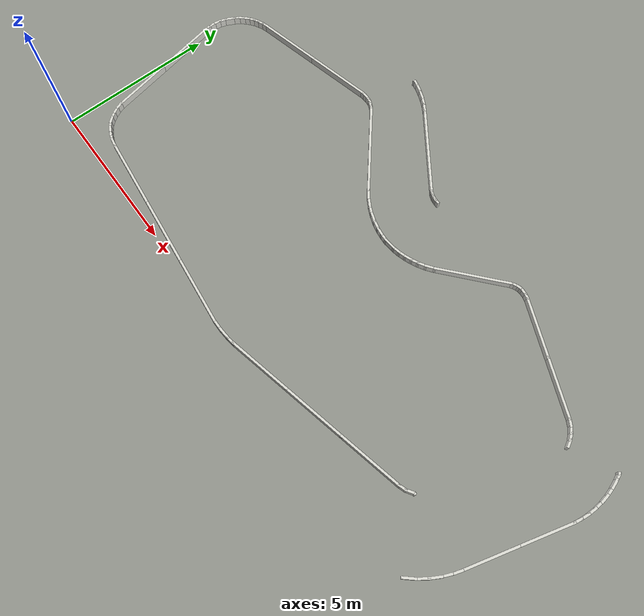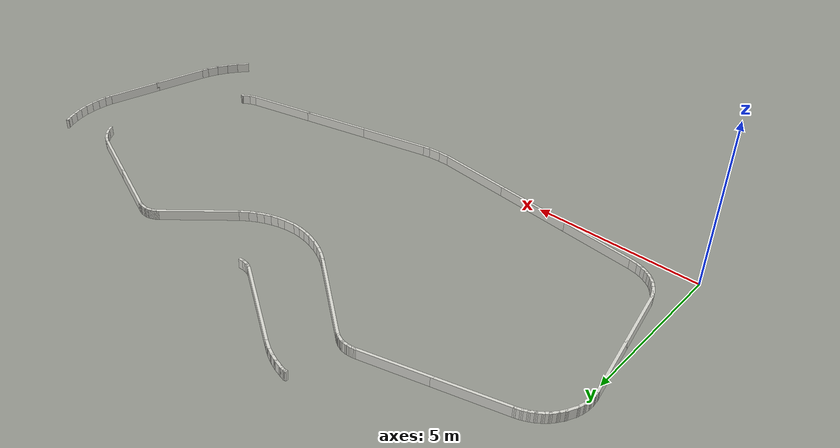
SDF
<sdf version="1.9">
 <world name="default">
  <model name="track_wall">
   <static>true</static>
   <link name="wall_link">
    <collision name="left1_0_0_collision">
     <pose>17.558559 5.969102 0.150000 0.000000 0.000000 2.106433</pose>
     <geometry><box><size>0.284899 0.080000 0.300000</size></box></geometry>
    </collision>
    <visual name="left1_0_0_visual">
     <pose>17.558559 5.969102 0.150000 0.000000 0.000000 2.106433</pose>
     <geometry><box><size>0.284899 0.080000 0.300000</size></box></geometry>
     <material><ambient>0.85 0.85 0.82 1</ambient><diffuse>0.85 0.85 0.82 1</diffuse></material>
    </visual>
    <collision name="left1_1_0_collision">
     <pose>17.440001 6.135021 0.150000 0.000000 0.000000 2.276211</pose>
     <geometry><box><size>0.284423 0.080000 0.300000</size></box></geometry>
    </collision>
    <visual name="left1_1_0_visual">
     <pose>17.440001 6.135021 0.150000 0.000000 0.000000 2.276211</pose>
     <geometry><box><size>0.284423 0.080000 0.300000</size></box></geometry>
     <material><ambient>0.85 0.85 0.82 1</ambient><diffuse>0.85 0.85 0.82 1</diffuse></material>
    </visual>
    <collision name="left1_2_0_collision">
     <pose>17.295451 6.278189 0.150000 0.000000 0.000000 2.445988</pose>
     <geometry><box><size>0.283947 0.080000 0.300000</size></box></geometry>
    </collision>
    <visual name="left1_2_0_visual">
     <pose>17.295451 6.278189 0.150000 0.000000 0.000000 2.445988</pose>
     <geometry><box><size>0.283947 0.080000 0.300000</size></box></geometry>
     <material><ambient>0.85 0.85 0.82 1</ambient><diffuse>0.85 0.85 0.82 1</diffuse></material>
    </visual>
    <collision name="left1_3_0_collision">
     <pose>17.129177 6.394603 0.150000 0.000000 0.000000 2.615766</pose>
     <geometry><box><size>0.283471 0.080000 0.300000</size></box></geometry>
    </collision>
    <visual name="left1_3_0_visual">
     <pose>17.129177 6.394603 0.150000 0.000000 0.000000 2.615766</pose>
     <geometry><box><size>0.283471 0.080000 0.300000</size></box></geometry>
     <material><ambient>0.85 0.85 0.82 1</ambient><diffuse>0.85 0.85 0.82 1</diffuse></material>
    </visual>
    <collision name="left1_4_0_collision">
     <pose>16.167286 6.801773 0.150000 0.000000 0.000000 2.754644</pose>
     <geometry><box><size>1.967337 0.080000 0.300000</size></box></geometry>
    </collision>
    <visual name="left1_4_0_visual">
     <pose>16.167286 6.801773 0.150000 0.000000 0.000000 2.754644</pose>
     <geometry><box><size>1.967337 0.080000 0.300000</size></box></geometry>
     <material><ambient>0.85 0.85 0.82 1</ambient><diffuse>0.85 0.85 0.82 1</diffuse></material>
    </visual>
    <collision name="left1_4_1_collision">
     <pose>14.419489 7.513986 0.150000 0.000000 0.000000 2.754644</pose>
     <geometry><box><size>1.967337 0.080000 0.300000</size></box></geometry>
    </collision>
    <visual name="left1_4_1_visual">
     <pose>14.419489 7.513986 0.150000 0.000000 0.000000 2.754644</pose>
     <geometry><box><size>1.967337 0.080000 0.300000</size></box></geometry>
     <material><ambient>0.85 0.85 0.82 1</ambient><diffuse>0.85 0.85 0.82 1</diffuse></material>
    </visual>
    <collision name="left1_5_0_collision">
     <pose>13.476886 7.889245 0.150000 0.000000 0.000000 2.869739</pose>
     <geometry><box><size>0.222648 0.080000 0.300000</size></box></geometry>
    </collision>
    <visual name="left1_5_0_visual">
     <pose>13.476886 7.889245 0.150000 0.000000 0.000000 2.869739</pose>
     <geometry><box><size>0.222648 0.080000 0.300000</size></box></geometry>
     <material><ambient>0.85 0.85 0.82 1</ambient><diffuse>0.85 0.85 0.82 1</diffuse></material>
    </visual>
    <collision name="left1_6_0_collision">
     <pose>13.332608 7.914382 0.150000 0.000000 0.000000 3.062554</pose>
     <geometry><box><size>0.231621 0.080000 0.300000</size></box></geometry>
    </collision>
    <visual name="left1_6_0_visual">
     <pose>13.332608 7.914382 0.150000 0.000000 0.000000 3.062554</pose>
     <geometry><box><size>0.231621 0.080000 0.300000</size></box></geometry>
     <material><ambient>0.85 0.85 0.82 1</ambient><diffuse>0.85 0.85 0.82 1</diffuse></material>
    </visual>
    <collision name="left1_7_0_collision">
     <pose>13.205226 7.915748 0.150000 0.000000 0.000000 -3.052659</pose>
     <geometry><box><size>0.184027 0.080000 0.300000</size></box></geometry>
    </collision>
    <visual name="left1_7_0_visual">
     <pose>13.205226 7.915748 0.150000 0.000000 0.000000 -3.052659</pose>
     <geometry><box><size>0.184027 0.080000 0.300000</size></box></geometry>
     <material><ambient>0.85 0.85 0.82 1</ambient><diffuse>0.85 0.85 0.82 1</diffuse></material>
    </visual>
    <collision name="left1_8_0_collision">
     <pose>13.112785 7.898717 0.150000 0.000000 0.000000 -2.845142</pose>
     <geometry><box><size>0.164972 0.080000 0.300000</size></box></geometry>
    </collision>
    <visual name="left1_8_0_visual">
     <pose>13.112785 7.898717 0.150000 0.000000 0.000000 -2.845142</pose>
     <geometry><box><size>0.164972 0.080000 0.300000</size></box></geometry>
     <material><ambient>0.85 0.85 0.82 1</ambient><diffuse>0.85 0.85 0.82 1</diffuse></material>
    </visual>
    <collision name="left1_9_0_collision">
     <pose>13.021315 7.863096 0.150000 0.000000 0.000000 -2.713295</pose>
     <geometry><box><size>0.191771 0.080000 0.300000</size></box></geometry>
    </collision>
    <visual name="left1_9_0_visual">
     <pose>13.021315 7.863096 0.150000 0.000000 0.000000 -2.713295</pose>
     <geometry><box><size>0.191771 0.080000 0.300000</size></box></geometry>
     <material><ambient>0.85 0.85 0.82 1</ambient><diffuse>0.85 0.85 0.82 1</diffuse></material>
    </visual>
    <collision name="left1_10_0_collision">
     <pose>12.924410 7.809763 0.150000 0.000000 0.000000 -2.562491</pose>
     <geometry><box><size>0.190082 0.080000 0.300000</size></box></geometry>
    </collision>
    <visual name="left1_10_0_visual">
     <pose>12.924410 7.809763 0.150000 0.000000 0.000000 -2.562491</pose>
     <geometry><box><size>0.190082 0.080000 0.300000</size></box></geometry>
     <material><ambient>0.85 0.85 0.82 1</ambient><diffuse>0.85 0.85 0.82 1</diffuse></material>
    </visual>
    <collision name="left1_11_0_collision">
     <pose>11.999515 7.005900 0.150000 0.000000 0.000000 -2.419700</pose>
     <geometry><box><size>2.421805 0.080000 0.300000</size></box></geometry>
    </collision>
    <visual name="left1_11_0_visual">
     <pose>11.999515 7.005900 0.150000 0.000000 0.000000 -2.419700</pose>
     <geometry><box><size>2.421805 0.080000 0.300000</size></box></geometry>
     <material><ambient>0.85 0.85 0.82 1</ambient><diffuse>0.85 0.85 0.82 1</diffuse></material>
    </visual>
    <collision name="left1_12_0_collision">
     <pose>11.007402 6.147697 0.150000 0.000000 0.000000 -2.500931</pose>
     <geometry><box><size>0.362613 0.080000 0.300000</size></box></geometry>
    </collision>
    <visual name="left1_12_0_visual">
     <pose>11.007402 6.147697 0.150000 0.000000 0.000000 -2.500931</pose>
     <geometry><box><size>0.362613 0.080000 0.300000</size></box></geometry>
     <material><ambient>0.85 0.85 0.82 1</ambient><diffuse>0.85 0.85 0.82 1</diffuse></material>
    </visual>
    <collision name="left1_13_0_collision">
     <pose>10.786143 5.998304 0.150000 0.000000 0.000000 -2.600174</pose>
     <geometry><box><size>0.331986 0.080000 0.300000</size></box></geometry>
    </collision>
    <visual name="left1_13_0_visual">
     <pose>10.786143 5.998304 0.150000 0.000000 0.000000 -2.600174</pose>
     <geometry><box><size>0.331986 0.080000 0.300000</size></box></geometry>
     <material><ambient>0.85 0.85 0.82 1</ambient><diffuse>0.85 0.85 0.82 1</diffuse></material>
    </visual>
    <collision name="left1_14_0_collision">
     <pose>10.578817 5.884908 0.150000 0.000000 0.000000 -2.687742</pose>
     <geometry><box><size>0.301085 0.080000 0.300000</size></box></geometry>
    </collision>
    <visual name="left1_14_0_visual">
     <pose>10.578817 5.884908 0.150000 0.000000 0.000000 -2.687742</pose>
     <geometry><box><size>0.301085 0.080000 0.300000</size></box></geometry>
     <material><ambient>0.85 0.85 0.82 1</ambient><diffuse>0.85 0.85 0.82 1</diffuse></material>
    </visual>
    <collision name="left1_15_0_collision">
     <pose>10.376237 5.796153 0.150000 0.000000 0.000000 -2.769476</pose>
     <geometry><box><size>0.301626 0.080000 0.300000</size></box></geometry>
    </collision>
    <visual name="left1_15_0_visual">
     <pose>10.376237 5.796153 0.150000 0.000000 0.000000 -2.769476</pose>
     <geometry><box><size>0.301626 0.080000 0.300000</size></box></geometry>
     <material><ambient>0.85 0.85 0.82 1</ambient><diffuse>0.85 0.85 0.82 1</diffuse></material>
    </visual>
    <collision name="left1_16_0_collision">
     <pose>10.166576 5.724057 0.150000 0.000000 0.000000 -2.851209</pose>
     <geometry><box><size>0.302166 0.080000 0.300000</size></box></geometry>
    </collision>
    <visual name="left1_16_0_visual">
     <pose>10.166576 5.724057 0.150000 0.000000 0.000000 -2.851209</pose>
     <geometry><box><size>0.302166 0.080000 0.300000</size></box></geometry>
     <material><ambient>0.85 0.85 0.82 1</ambient><diffuse>0.85 0.85 0.82 1</diffuse></material>
    </visual>
    <collision name="left1_17_0_collision">
     <pose>9.951205 5.669186 0.150000 0.000000 0.000000 -2.932943</pose>
     <geometry><box><size>0.302706 0.080000 0.300000</size></box></geometry>
    </collision>
    <visual name="left1_17_0_visual">
     <pose>9.951205 5.669186 0.150000 0.000000 0.000000 -2.932943</pose>
     <geometry><box><size>0.302706 0.080000 0.300000</size></box></geometry>
     <material><ambient>0.85 0.85 0.82 1</ambient><diffuse>0.85 0.85 0.82 1</diffuse></material>
    </visual>
    <collision name="left1_18_0_collision">
     <pose>9.667745 5.628430 0.150000 0.000000 0.000000 -3.040569</pose>
     <geometry><box><size>0.430833 0.080000 0.300000</size></box></geometry>
    </collision>
    <visual name="left1_18_0_visual">
     <pose>9.667745 5.628430 0.150000 0.000000 0.000000 -3.040569</pose>
     <geometry><box><size>0.430833 0.080000 0.300000</size></box></geometry>
     <material><ambient>0.85 0.85 0.82 1</ambient><diffuse>0.85 0.85 0.82 1</diffuse></material>
    </visual>
    <collision name="left1_19_0_collision">
     <pose>9.381660 5.617126 0.150000 0.000000 0.000000 3.084402</pose>
     <geometry><box><size>0.303493 0.080000 0.300000</size></box></geometry>
    </collision>
    <visual name="left1_19_0_visual">
     <pose>9.381660 5.617126 0.150000 0.000000 0.000000 3.084402</pose>
     <geometry><box><size>0.303493 0.080000 0.300000</size></box></geometry>
     <material><ambient>0.85 0.85 0.82 1</ambient><diffuse>0.85 0.85 0.82 1</diffuse></material>
    </visual>
    <collision name="left1_20_0_collision">
     <pose>9.159662 5.638953 0.150000 0.000000 0.000000 3.002685</pose>
     <geometry><box><size>0.303015 0.080000 0.300000</size></box></geometry>
    </collision>
    <visual name="left1_20_0_visual">
     <pose>9.159662 5.638953 0.150000 0.000000 0.000000 3.002685</pose>
     <geometry><box><size>0.303015 0.080000 0.300000</size></box></geometry>
     <material><ambient>0.85 0.85 0.82 1</ambient><diffuse>0.85 0.85 0.82 1</diffuse></material>
    </visual>
    <collision name="left1_21_0_collision">
     <pose>8.925340 5.682938 0.150000 0.000000 0.000000 2.915135</pose>
     <geometry><box><size>0.334269 0.080000 0.300000</size></box></geometry>
    </collision>
    <visual name="left1_21_0_visual">
     <pose>8.925340 5.682938 0.150000 0.000000 0.000000 2.915135</pose>
     <geometry><box><size>0.334269 0.080000 0.300000</size></box></geometry>
     <material><ambient>0.85 0.85 0.82 1</ambient><diffuse>0.85 0.85 0.82 1</diffuse></material>
    </visual>
    <collision name="left1_22_0_collision">
     <pose>8.666310 5.757121 0.150000 0.000000 0.000000 2.815912</pose>
     <geometry><box><size>0.365280 0.080000 0.300000</size></box></geometry>
    </collision>
    <visual name="left1_22_0_visual">
     <pose>8.666310 5.757121 0.150000 0.000000 0.000000 2.815912</pose>
     <geometry><box><size>0.365280 0.080000 0.300000</size></box></geometry>
     <material><ambient>0.85 0.85 0.82 1</ambient><diffuse>0.85 0.85 0.82 1</diffuse></material>
    </visual>
    <collision name="left1_23_0_collision">
     <pose>8.415943 5.854896 0.150000 0.000000 0.000000 2.716678</pose>
     <geometry><box><size>0.332944 0.080000 0.300000</size></box></geometry>
    </collision>
    <visual name="left1_23_0_visual">
     <pose>8.415943 5.854896 0.150000 0.000000 0.000000 2.716678</pose>
     <geometry><box><size>0.332944 0.080000 0.300000</size></box></geometry>
     <material><ambient>0.85 0.85 0.82 1</ambient><diffuse>0.85 0.85 0.82 1</diffuse></material>
    </visual>
    <collision name="left1_24_0_collision">
     <pose>8.177871 5.978047 0.150000 0.000000 0.000000 2.617454</pose>
     <geometry><box><size>0.363790 0.080000 0.300000</size></box></geometry>
    </collision>
    <visual name="left1_24_0_visual">
     <pose>8.177871 5.978047 0.150000 0.000000 0.000000 2.617454</pose>
     <geometry><box><size>0.363790 0.080000 0.300000</size></box></geometry>
     <material><ambient>0.85 0.85 0.82 1</ambient><diffuse>0.85 0.85 0.82 1</diffuse></material>
    </visual>
    <collision name="left1_25_0_collision">
     <pose>7.945148 6.128829 0.150000 0.000000 0.000000 2.513646</pose>
     <geometry><box><size>0.351557 0.080000 0.300000</size></box></geometry>
    </collision>
    <visual name="left1_25_0_visual">
     <pose>7.945148 6.128829 0.150000 0.000000 0.000000 2.513646</pose>
     <geometry><box><size>0.351557 0.080000 0.300000</size></box></geometry>
     <material><ambient>0.85 0.85 0.82 1</ambient><diffuse>0.85 0.85 0.82 1</diffuse></material>
    </visual>
    <collision name="left1_26_0_collision">
     <pose>6.713381 7.126007 0.150000 0.000000 0.000000 2.456130</pose>
     <geometry><box><size>2.978468 0.080000 0.300000</size></box></geometry>
    </collision>
    <visual name="left1_26_0_visual">
     <pose>6.713381 7.126007 0.150000 0.000000 0.000000 2.456130</pose>
     <geometry><box><size>2.978468 0.080000 0.300000</size></box></geometry>
     <material><ambient>0.85 0.85 0.82 1</ambient><diffuse>0.85 0.85 0.82 1</diffuse></material>
    </visual>
    <collision name="left1_27_0_collision">
     <pose>5.534527 8.079462 0.150000 0.000000 0.000000 2.577443</pose>
     <geometry><box><size>0.214820 0.080000 0.300000</size></box></geometry>
    </collision>
    <visual name="left1_27_0_visual">
     <pose>5.534527 8.079462 0.150000 0.000000 0.000000 2.577443</pose>
     <geometry><box><size>0.214820 0.080000 0.300000</size></box></geometry>
     <material><ambient>0.85 0.85 0.82 1</ambient><diffuse>0.85 0.85 0.82 1</diffuse></material>
    </visual>
    <collision name="left1_28_0_collision">
     <pose>5.415302 8.143306 0.150000 0.000000 0.000000 2.721643</pose>
     <geometry><box><size>0.216370 0.080000 0.300000</size></box></geometry>
    </collision>
    <visual name="left1_28_0_visual">
     <pose>5.415302 8.143306 0.150000 0.000000 0.000000 2.721643</pose>
     <geometry><box><size>0.216370 0.080000 0.300000</size></box></geometry>
     <material><ambient>0.85 0.85 0.82 1</ambient><diffuse>0.85 0.85 0.82 1</diffuse></material>
    </visual>
    <collision name="left1_29_0_collision">
     <pose>5.317632 8.181826 0.150000 0.000000 0.000000 2.847622</pose>
     <geometry><box><size>0.153994 0.080000 0.300000</size></box></geometry>
    </collision>
    <visual name="left1_29_0_visual">
     <pose>5.317632 8.181826 0.150000 0.000000 0.000000 2.847622</pose>
     <geometry><box><size>0.153994 0.080000 0.300000</size></box></geometry>
     <material><ambient>0.85 0.85 0.82 1</ambient><diffuse>0.85 0.85 0.82 1</diffuse></material>
    </visual>
    <collision name="left1_30_0_collision">
     <pose>5.213927 8.198839 0.150000 0.000000 0.000000 3.049708</pose>
     <geometry><box><size>0.217170 0.080000 0.300000</size></box></geometry>
    </collision>
    <visual name="left1_30_0_visual">
     <pose>5.213927 8.198839 0.150000 0.000000 0.000000 3.049708</pose>
     <geometry><box><size>0.217170 0.080000 0.300000</size></box></geometry>
     <material><ambient>0.85 0.85 0.82 1</ambient><diffuse>0.85 0.85 0.82 1</diffuse></material>
    </visual>
    <collision name="left1_31_0_collision">
     <pose>5.082626 8.202231 0.150000 0.000000 0.000000 -3.095588</pose>
     <geometry><box><size>0.206144 0.080000 0.300000</size></box></geometry>
    </collision>
    <visual name="left1_31_0_visual">
     <pose>5.082626 8.202231 0.150000 0.000000 0.000000 -3.095588</pose>
     <geometry><box><size>0.206144 0.080000 0.300000</size></box></geometry>
     <material><ambient>0.85 0.85 0.82 1</ambient><diffuse>0.85 0.85 0.82 1</diffuse></material>
    </visual>
    <collision name="left1_32_0_collision">
     <pose>4.957781 8.188182 0.150000 0.000000 0.000000 -2.963221</pose>
     <geometry><box><size>0.205673 0.080000 0.300000</size></box></geometry>
    </collision>
    <visual name="left1_32_0_visual">
     <pose>4.957781 8.188182 0.150000 0.000000 0.000000 -2.963221</pose>
     <geometry><box><size>0.205673 0.080000 0.300000</size></box></geometry>
     <material><ambient>0.85 0.85 0.82 1</ambient><diffuse>0.85 0.85 0.82 1</diffuse></material>
    </visual>
    <collision name="left1_33_0_collision">
     <pose>3.910963 7.922131 0.150000 0.000000 0.000000 -2.888359</pose>
     <geometry><box><size>2.114853 0.080000 0.300000</size></box></geometry>
    </collision>
    <visual name="left1_33_0_visual">
     <pose>3.910963 7.922131 0.150000 0.000000 0.000000 -2.888359</pose>
     <geometry><box><size>2.114853 0.080000 0.300000</size></box></geometry>
     <material><ambient>0.85 0.85 0.82 1</ambient><diffuse>0.85 0.85 0.82 1</diffuse></material>
    </visual>
    <collision name="left1_33_1_collision">
     <pose>1.941006 7.412329 0.150000 0.000000 0.000000 -2.888359</pose>
     <geometry><box><size>2.114853 0.080000 0.300000</size></box></geometry>
    </collision>
    <visual name="left1_33_1_visual">
     <pose>1.941006 7.412329 0.150000 0.000000 0.000000 -2.888359</pose>
     <geometry><box><size>2.114853 0.080000 0.300000</size></box></geometry>
     <material><ambient>0.85 0.85 0.82 1</ambient><diffuse>0.85 0.85 0.82 1</diffuse></material>
    </visual>
    <collision name="left1_34_0_collision">
     <pose>0.878819 7.132222 0.150000 0.000000 0.000000 -2.826043</pose>
     <geometry><box><size>0.242439 0.080000 0.300000</size></box></geometry>
    </collision>
    <visual name="left1_34_0_visual">
     <pose>0.878819 7.132222 0.150000 0.000000 0.000000 -2.826043</pose>
     <geometry><box><size>0.242439 0.080000 0.300000</size></box></geometry>
     <material><ambient>0.85 0.85 0.82 1</ambient><diffuse>0.85 0.85 0.82 1</diffuse></material>
    </visual>
    <collision name="left1_35_0_collision">
     <pose>0.728655 7.074033 0.150000 0.000000 0.000000 -2.716986</pose>
     <geometry><box><size>0.240128 0.080000 0.300000</size></box></geometry>
    </collision>
    <visual name="left1_35_0_visual">
     <pose>0.728655 7.074033 0.150000 0.000000 0.000000 -2.716986</pose>
     <geometry><box><size>0.240128 0.080000 0.300000</size></box></geometry>
     <material><ambient>0.85 0.85 0.82 1</ambient><diffuse>0.85 0.85 0.82 1</diffuse></material>
    </visual>
    <collision name="left1_36_0_collision">
     <pose>0.586914 7.000491 0.150000 0.000000 0.000000 -2.608828</pose>
     <geometry><box><size>0.239708 0.080000 0.300000</size></box></geometry>
    </collision>
    <visual name="left1_36_0_visual">
     <pose>0.586914 7.000491 0.150000 0.000000 0.000000 -2.608828</pose>
     <geometry><box><size>0.239708 0.080000 0.300000</size></box></geometry>
     <material><ambient>0.85 0.85 0.82 1</ambient><diffuse>0.85 0.85 0.82 1</diffuse></material>
    </visual>
    <collision name="left1_37_0_collision">
     <pose>0.454289 6.912309 0.150000 0.000000 0.000000 -2.500670</pose>
     <geometry><box><size>0.239289 0.080000 0.300000</size></box></geometry>
    </collision>
    <visual name="left1_37_0_visual">
     <pose>0.454289 6.912309 0.150000 0.000000 0.000000 -2.500670</pose>
     <geometry><box><size>0.239289 0.080000 0.300000</size></box></geometry>
     <material><ambient>0.85 0.85 0.82 1</ambient><diffuse>0.85 0.85 0.82 1</diffuse></material>
    </visual>
    <collision name="left1_38_0_collision">
     <pose>0.332279 6.810595 0.150000 0.000000 0.000000 -2.392512</pose>
     <geometry><box><size>0.238869 0.080000 0.300000</size></box></geometry>
    </collision>
    <visual name="left1_38_0_visual">
     <pose>0.332279 6.810595 0.150000 0.000000 0.000000 -2.392512</pose>
     <geometry><box><size>0.238869 0.080000 0.300000</size></box></geometry>
     <material><ambient>0.85 0.85 0.82 1</ambient><diffuse>0.85 0.85 0.82 1</diffuse></material>
    </visual>
    <collision name="left1_39_0_collision">
     <pose>0.214874 6.686921 0.150000 0.000000 0.000000 -2.276041</pose>
     <geometry><box><size>0.262760 0.080000 0.300000</size></box></geometry>
    </collision>
    <visual name="left1_39_0_visual">
     <pose>0.214874 6.686921 0.150000 0.000000 0.000000 -2.276041</pose>
     <geometry><box><size>0.262760 0.080000 0.300000</size></box></geometry>
     <material><ambient>0.85 0.85 0.82 1</ambient><diffuse>0.85 0.85 0.82 1</diffuse></material>
    </visual>
    <collision name="left1_40_0_collision">
     <pose>0.101692 6.536471 0.150000 0.000000 0.000000 -2.159101</pose>
     <geometry><box><size>0.274423 0.080000 0.300000</size></box></geometry>
    </collision>
    <visual name="left1_40_0_visual">
     <pose>0.101692 6.536471 0.150000 0.000000 0.000000 -2.159101</pose>
     <geometry><box><size>0.274423 0.080000 0.300000</size></box></geometry>
     <material><ambient>0.85 0.85 0.82 1</ambient><diffuse>0.85 0.85 0.82 1</diffuse></material>
    </visual>
    <collision name="left1_41_0_collision">
     <pose>-0.018891 6.318980 0.150000 0.000000 0.000000 -2.024584</pose>
     <geometry><box><size>0.384012 0.080000 0.300000</size></box></geometry>
    </collision>
    <visual name="left1_41_0_visual">
     <pose>-0.018891 6.318980 0.150000 0.000000 0.000000 -2.024584</pose>
     <geometry><box><size>0.384012 0.080000 0.300000</size></box></geometry>
     <material><ambient>0.85 0.85 0.82 1</ambient><diffuse>0.85 0.85 0.82 1</diffuse></material>
    </visual>
    <collision name="left1_42_0_collision">
     <pose>-0.111514 6.094454 0.150000 0.000000 0.000000 -1.858248</pose>
     <geometry><box><size>0.263331 0.080000 0.300000</size></box></geometry>
    </collision>
    <visual name="left1_42_0_visual">
     <pose>-0.111514 6.094454 0.150000 0.000000 0.000000 -1.858248</pose>
     <geometry><box><size>0.263331 0.080000 0.300000</size></box></geometry>
     <material><ambient>0.85 0.85 0.82 1</ambient><diffuse>0.85 0.85 0.82 1</diffuse></material>
    </visual>
    <collision name="left1_43_0_collision">
     <pose>-0.152390 5.915831 0.150000 0.000000 0.000000 -1.733456</pose>
     <geometry><box><size>0.263866 0.080000 0.300000</size></box></geometry>
    </collision>
    <visual name="left1_43_0_visual">
     <pose>-0.152390 5.915831 0.150000 0.000000 0.000000 -1.733456</pose>
     <geometry><box><size>0.263866 0.080000 0.300000</size></box></geometry>
     <material><ambient>0.85 0.85 0.82 1</ambient><diffuse>0.85 0.85 0.82 1</diffuse></material>
    </visual>
    <collision name="left1_44_0_collision">
     <pose>-0.170769 5.732977 0.150000 0.000000 0.000000 -1.608665</pose>
     <geometry><box><size>0.264400 0.080000 0.300000</size></box></geometry>
    </collision>
    <visual name="left1_44_0_visual">
     <pose>-0.170769 5.732977 0.150000 0.000000 0.000000 -1.608665</pose>
     <geometry><box><size>0.264400 0.080000 0.300000</size></box></geometry>
     <material><ambient>0.85 0.85 0.82 1</ambient><diffuse>0.85 0.85 0.82 1</diffuse></material>
    </visual>
    <collision name="left1_45_0_collision">
     <pose>-0.167126 5.554836 0.150000 0.000000 0.000000 -1.488037</pose>
     <geometry><box><size>0.252604 0.080000 0.300000</size></box></geometry>
    </collision>
    <visual name="left1_45_0_visual">
     <pose>-0.167126 5.554836 0.150000 0.000000 0.000000 -1.488037</pose>
     <geometry><box><size>0.252604 0.080000 0.300000</size></box></geometry>
     <material><ambient>0.85 0.85 0.82 1</ambient><diffuse>0.85 0.85 0.82 1</diffuse></material>
    </visual>
    <collision name="left1_46_0_collision">
     <pose>0.019290 4.509278 0.150000 0.000000 0.000000 -1.386087</pose>
     <geometry><box><size>2.032313 0.080000 0.300000</size></box></geometry>
    </collision>
    <visual name="left1_46_0_visual">
     <pose>0.019290 4.509278 0.150000 0.000000 0.000000 -1.386087</pose>
     <geometry><box><size>2.032313 0.080000 0.300000</size></box></geometry>
     <material><ambient>0.85 0.85 0.82 1</ambient><diffuse>0.85 0.85 0.82 1</diffuse></material>
    </visual>
    <collision name="left1_46_1_collision">
     <pose>0.377853 2.590174 0.150000 0.000000 0.000000 -1.386087</pose>
     <geometry><box><size>2.032313 0.080000 0.300000</size></box></geometry>
    </collision>
    <visual name="left1_46_1_visual">
     <pose>0.377853 2.590174 0.150000 0.000000 0.000000 -1.386087</pose>
     <geometry><box><size>2.032313 0.080000 0.300000</size></box></geometry>
     <material><ambient>0.85 0.85 0.82 1</ambient><diffuse>0.85 0.85 0.82 1</diffuse></material>
    </visual>
    <collision name="left1_47_0_collision">
     <pose>0.589867 1.539819 0.150000 0.000000 0.000000 -1.224819</pose>
     <geometry><box><size>0.273045 0.080000 0.300000</size></box></geometry>
    </collision>
    <visual name="left1_47_0_visual">
     <pose>0.589867 1.539819 0.150000 0.000000 0.000000 -1.224819</pose>
     <geometry><box><size>0.273045 0.080000 0.300000</size></box></geometry>
     <material><ambient>0.85 0.85 0.82 1</ambient><diffuse>0.85 0.85 0.82 1</diffuse></material>
    </visual>
    <collision name="left1_48_0_collision">
     <pose>0.666524 1.362765 0.150000 0.000000 0.000000 -1.099766</pose>
     <geometry><box><size>0.273582 0.080000 0.300000</size></box></geometry>
    </collision>
    <visual name="left1_48_0_visual">
     <pose>0.666524 1.362765 0.150000 0.000000 0.000000 -1.099766</pose>
     <geometry><box><size>0.273582 0.080000 0.300000</size></box></geometry>
     <material><ambient>0.85 0.85 0.82 1</ambient><diffuse>0.85 0.85 0.82 1</diffuse></material>
    </visual>
    <collision name="left1_49_0_collision">
     <pose>0.764938 1.196194 0.150000 0.000000 0.000000 -0.974713</pose>
     <geometry><box><size>0.274119 0.080000 0.300000</size></box></geometry>
    </collision>
    <visual name="left1_49_0_visual">
     <pose>0.764938 1.196194 0.150000 0.000000 0.000000 -0.974713</pose>
     <geometry><box><size>0.274119 0.080000 0.300000</size></box></geometry>
     <material><ambient>0.85 0.85 0.82 1</ambient><diffuse>0.85 0.85 0.82 1</diffuse></material>
    </visual>
    <collision name="left1_50_0_collision">
     <pose>0.879118 1.047398 0.150000 0.000000 0.000000 -0.853832</pose>
     <geometry><box><size>0.261678 0.080000 0.300000</size></box></geometry>
    </collision>
    <visual name="left1_50_0_visual">
     <pose>0.879118 1.047398 0.150000 0.000000 0.000000 -0.853832</pose>
     <geometry><box><size>0.261678 0.080000 0.300000</size></box></geometry>
     <material><ambient>0.85 0.85 0.82 1</ambient><diffuse>0.85 0.85 0.82 1</diffuse></material>
    </visual>
    <collision name="left1_51_0_collision">
     <pose>1.001218 0.932307 0.150000 0.000000 0.000000 -0.641541</pose>
     <geometry><box><size>0.235795 0.080000 0.300000</size></box></geometry>
    </collision>
    <visual name="left1_51_0_visual">
     <pose>1.001218 0.932307 0.150000 0.000000 0.000000 -0.641541</pose>
     <geometry><box><size>0.235795 0.080000 0.300000</size></box></geometry>
     <material><ambient>0.85 0.85 0.82 1</ambient><diffuse>0.85 0.85 0.82 1</diffuse></material>
    </visual>
    <collision name="left1_52_0_collision">
     <pose>1.130053 0.846208 0.150000 0.000000 0.000000 -0.536284</pose>
     <geometry><box><size>0.234548 0.080000 0.300000</size></box></geometry>
    </collision>
    <visual name="left1_52_0_visual">
     <pose>1.130053 0.846208 0.150000 0.000000 0.000000 -0.536284</pose>
     <geometry><box><size>0.234548 0.080000 0.300000</size></box></geometry>
     <material><ambient>0.85 0.85 0.82 1</ambient><diffuse>0.85 0.85 0.82 1</diffuse></material>
    </visual>
    <collision name="left1_53_0_collision">
     <pose>1.265931 0.774408 0.150000 0.000000 0.000000 -0.435526</pose>
     <geometry><box><size>0.233207 0.080000 0.300000</size></box></geometry>
    </collision>
    <visual name="left1_53_0_visual">
     <pose>1.265931 0.774408 0.150000 0.000000 0.000000 -0.435526</pose>
     <geometry><box><size>0.233207 0.080000 0.300000</size></box></geometry>
     <material><ambient>0.85 0.85 0.82 1</ambient><diffuse>0.85 0.85 0.82 1</diffuse></material>
    </visual>
    <collision name="left1_54_0_collision">
     <pose>1.413156 0.715401 0.150000 0.000000 0.000000 -0.330568</pose>
     <geometry><box><size>0.244448 0.080000 0.300000</size></box></geometry>
    </collision>
    <visual name="left1_54_0_visual">
     <pose>1.413156 0.715401 0.150000 0.000000 0.000000 -0.330568</pose>
     <geometry><box><size>0.244448 0.080000 0.300000</size></box></geometry>
     <material><ambient>0.85 0.85 0.82 1</ambient><diffuse>0.85 0.85 0.82 1</diffuse></material>
    </visual>
    <collision name="left1_55_0_collision">
     <pose>1.613508 0.664871 0.150000 0.000000 0.000000 -0.192103</pose>
     <geometry><box><size>0.329755 0.080000 0.300000</size></box></geometry>
    </collision>
    <visual name="left1_55_0_visual">
     <pose>1.613508 0.664871 0.150000 0.000000 0.000000 -0.192103</pose>
     <geometry><box><size>0.329755 0.080000 0.300000</size></box></geometry>
     <material><ambient>0.85 0.85 0.82 1</ambient><diffuse>0.85 0.85 0.82 1</diffuse></material>
    </visual>
    <collision name="left1_56_0_collision">
     <pose>2.859368 0.518170 0.150000 0.000000 0.000000 -0.108942</pose>
     <geometry><box><size>2.339958 0.080000 0.300000</size></box></geometry>
    </collision>
    <visual name="left1_56_0_visual">
     <pose>2.859368 0.518170 0.150000 0.000000 0.000000 -0.108942</pose>
     <geometry><box><size>2.339958 0.080000 0.300000</size></box></geometry>
     <material><ambient>0.85 0.85 0.82 1</ambient><diffuse>0.85 0.85 0.82 1</diffuse></material>
    </visual>
    <collision name="left1_56_1_collision">
     <pose>5.105928 0.272453 0.150000 0.000000 0.000000 -0.108942</pose>
     <geometry><box><size>2.339958 0.080000 0.300000</size></box></geometry>
    </collision>
    <visual name="left1_56_1_visual">
     <pose>5.105928 0.272453 0.150000 0.000000 0.000000 -0.108942</pose>
     <geometry><box><size>2.339958 0.080000 0.300000</size></box></geometry>
     <material><ambient>0.85 0.85 0.82 1</ambient><diffuse>0.85 0.85 0.82 1</diffuse></material>
    </visual>
    <collision name="left1_56_2_collision">
     <pose>7.352488 0.026735 0.150000 0.000000 0.000000 -0.108942</pose>
     <geometry><box><size>2.339958 0.080000 0.300000</size></box></geometry>
    </collision>
    <visual name="left1_56_2_visual">
     <pose>7.352488 0.026735 0.150000 0.000000 0.000000 -0.108942</pose>
     <geometry><box><size>2.339958 0.080000 0.300000</size></box></geometry>
     <material><ambient>0.85 0.85 0.82 1</ambient><diffuse>0.85 0.85 0.82 1</diffuse></material>
    </visual>
    <collision name="left1_57_0_collision">
     <pose>8.635655 -0.098310 0.150000 0.000000 0.000000 -0.013675</pose>
     <geometry><box><size>0.399805 0.080000 0.300000</size></box></geometry>
    </collision>
    <visual name="left1_57_0_visual">
     <pose>8.635655 -0.098310 0.150000 0.000000 0.000000 -0.013675</pose>
     <geometry><box><size>0.399805 0.080000 0.300000</size></box></geometry>
     <material><ambient>0.85 0.85 0.82 1</ambient><diffuse>0.85 0.85 0.82 1</diffuse></material>
    </visual>
    <collision name="left1_58_0_collision">
     <pose>8.980393 -0.087651 0.150000 0.000000 0.000000 0.069384</pose>
     <geometry><box><size>0.450593 0.080000 0.300000</size></box></geometry>
    </collision>
    <visual name="left1_58_0_visual">
     <pose>8.980393 -0.087651 0.150000 0.000000 0.000000 0.069384</pose>
     <geometry><box><size>0.450593 0.080000 0.300000</size></box></geometry>
     <material><ambient>0.85 0.85 0.82 1</ambient><diffuse>0.85 0.85 0.82 1</diffuse></material>
    </visual>
    <collision name="left1_59_0_collision">
     <pose>9.276287 -0.057463 0.150000 0.000000 0.000000 0.154916</pose>
     <geometry><box><size>0.304777 0.080000 0.300000</size></box></geometry>
    </collision>
    <visual name="left1_59_0_visual">
     <pose>9.276287 -0.057463 0.150000 0.000000 0.000000 0.154916</pose>
     <geometry><box><size>0.304777 0.080000 0.300000</size></box></geometry>
     <material><ambient>0.85 0.85 0.82 1</ambient><diffuse>0.85 0.85 0.82 1</diffuse></material>
    </visual>
    <collision name="left1_60_0_collision">
     <pose>10.419762 0.191106 0.150000 0.000000 0.000000 0.220328</pose>
     <geometry><box><size>2.196018 0.080000 0.300000</size></box></geometry>
    </collision>
    <visual name="left1_60_0_visual">
     <pose>10.419762 0.191106 0.150000 0.000000 0.000000 0.220328</pose>
     <geometry><box><size>2.196018 0.080000 0.300000</size></box></geometry>
     <material><ambient>0.85 0.85 0.82 1</ambient><diffuse>0.85 0.85 0.82 1</diffuse></material>
    </visual>
    <collision name="left1_60_1_collision">
     <pose>12.484627 0.653561 0.150000 0.000000 0.000000 0.220328</pose>
     <geometry><box><size>2.196018 0.080000 0.300000</size></box></geometry>
    </collision>
    <visual name="left1_60_1_visual">
     <pose>12.484627 0.653561 0.150000 0.000000 0.000000 0.220328</pose>
     <geometry><box><size>2.196018 0.080000 0.300000</size></box></geometry>
     <material><ambient>0.85 0.85 0.82 1</ambient><diffuse>0.85 0.85 0.82 1</diffuse></material>
    </visual>
    <collision name="left1_60_2_collision">
     <pose>14.549493 1.116016 0.150000 0.000000 0.000000 0.220328</pose>
     <geometry><box><size>2.196018 0.080000 0.300000</size></box></geometry>
    </collision>
    <visual name="left1_60_2_visual">
     <pose>14.549493 1.116016 0.150000 0.000000 0.000000 0.220328</pose>
     <geometry><box><size>2.196018 0.080000 0.300000</size></box></geometry>
     <material><ambient>0.85 0.85 0.82 1</ambient><diffuse>0.85 0.85 0.82 1</diffuse></material>
    </visual>
    <collision name="left1_61_0_collision">
     <pose>15.688431 1.384676 0.150000 0.000000 0.000000 0.337972</pose>
     <geometry><box><size>0.305783 0.080000 0.300000</size></box></geometry>
    </collision>
    <visual name="left1_61_0_visual">
     <pose>15.688431 1.384676 0.150000 0.000000 0.000000 0.337972</pose>
     <geometry><box><size>0.305783 0.080000 0.300000</size></box></geometry>
     <material><ambient>0.85 0.85 0.82 1</ambient><diffuse>0.85 0.85 0.82 1</diffuse></material>
    </visual>
    <collision name="left1_62_0_collision">
     <pose>15.903131 1.491351 0.150000 0.000000 0.000000 0.569302</pose>
     <geometry><box><size>0.336909 0.080000 0.300000</size></box></geometry>
    </collision>
    <visual name="left1_62_0_visual">
     <pose>15.903131 1.491351 0.150000 0.000000 0.000000 0.569302</pose>
     <geometry><box><size>0.336909 0.080000 0.300000</size></box></geometry>
     <material><ambient>0.85 0.85 0.82 1</ambient><diffuse>0.85 0.85 0.82 1</diffuse></material>
    </visual>
    <collision name="left1_63_0_collision">
     <pose>16.018542 1.559890 0.150000 0.000000 0.000000 -0.097101</pose>
     <geometry><box><size>0.094502 0.080000 0.300000</size></box></geometry>
    </collision>
    <visual name="left1_63_0_visual">
     <pose>16.018542 1.559890 0.150000 0.000000 0.000000 -0.097101</pose>
     <geometry><box><size>0.094502 0.080000 0.300000</size></box></geometry>
     <material><ambient>0.85 0.85 0.82 1</ambient><diffuse>0.85 0.85 0.82 1</diffuse></material>
    </visual>
    <collision name="right0_0_0_collision">
     <pose>17.694865 0.036834 0.150000 0.000000 0.000000 0.845181</pose>
     <geometry><box><size>0.441814 0.080000 0.300000</size></box></geometry>
    </collision>
    <visual name="right0_0_0_visual">
     <pose>17.694865 0.036834 0.150000 0.000000 0.000000 0.845181</pose>
     <geometry><box><size>0.441814 0.080000 0.300000</size></box></geometry>
     <material><ambient>0.85 0.85 0.82 1</ambient><diffuse>0.85 0.85 0.82 1</diffuse></material>
    </visual>
    <collision name="right0_1_0_collision">
     <pose>17.919123 0.319100 0.150000 0.000000 0.000000 0.953898</pose>
     <geometry><box><size>0.440268 0.080000 0.300000</size></box></geometry>
    </collision>
    <visual name="right0_1_0_visual">
     <pose>17.919123 0.319100 0.150000 0.000000 0.000000 0.953898</pose>
     <geometry><box><size>0.440268 0.080000 0.300000</size></box></geometry>
     <material><ambient>0.85 0.85 0.82 1</ambient><diffuse>0.85 0.85 0.82 1</diffuse></material>
    </visual>
    <collision name="right0_2_0_collision">
     <pose>18.110606 0.622726 0.150000 0.000000 0.000000 1.062617</pose>
     <geometry><box><size>0.438721 0.080000 0.300000</size></box></geometry>
    </collision>
    <visual name="right0_2_0_visual">
     <pose>18.110606 0.622726 0.150000 0.000000 0.000000 1.062617</pose>
     <geometry><box><size>0.438721 0.080000 0.300000</size></box></geometry>
     <material><ambient>0.85 0.85 0.82 1</ambient><diffuse>0.85 0.85 0.82 1</diffuse></material>
    </visual>
    <collision name="right0_3_0_collision">
     <pose>18.267337 0.943949 0.150000 0.000000 0.000000 1.171336</pose>
     <geometry><box><size>0.437175 0.080000 0.300000</size></box></geometry>
    </collision>
    <visual name="right0_3_0_visual">
     <pose>18.267337 0.943949 0.150000 0.000000 0.000000 1.171336</pose>
     <geometry><box><size>0.437175 0.080000 0.300000</size></box></geometry>
     <material><ambient>0.85 0.85 0.82 1</ambient><diffuse>0.85 0.85 0.82 1</diffuse></material>
    </visual>
    <collision name="right0_4_0_collision">
     <pose>18.371401 1.216941 0.150000 0.000000 0.000000 1.261939</pose>
     <geometry><box><size>0.307704 0.080000 0.300000</size></box></geometry>
    </collision>
    <visual name="right0_4_0_visual">
     <pose>18.371401 1.216941 0.150000 0.000000 0.000000 1.261939</pose>
     <geometry><box><size>0.307704 0.080000 0.300000</size></box></geometry>
     <material><ambient>0.85 0.85 0.82 1</ambient><diffuse>0.85 0.85 0.82 1</diffuse></material>
    </visual>
    <collision name="right0_5_0_collision">
     <pose>18.626797 2.150387 0.150000 0.000000 0.000000 1.309296</pose>
     <geometry><box><size>1.788029 0.080000 0.300000</size></box></geometry>
    </collision>
    <visual name="right0_5_0_visual">
     <pose>18.626797 2.150387 0.150000 0.000000 0.000000 1.309296</pose>
     <geometry><box><size>1.788029 0.080000 0.300000</size></box></geometry>
     <material><ambient>0.85 0.85 0.82 1</ambient><diffuse>0.85 0.85 0.82 1</diffuse></material>
    </visual>
    <collision name="right0_5_1_collision">
     <pose>19.068374 3.800348 0.150000 0.000000 0.000000 1.309296</pose>
     <geometry><box><size>1.788029 0.080000 0.300000</size></box></geometry>
    </collision>
    <visual name="right0_5_1_visual">
     <pose>19.068374 3.800348 0.150000 0.000000 0.000000 1.309296</pose>
     <geometry><box><size>1.788029 0.080000 0.300000</size></box></geometry>
     <material><ambient>0.85 0.85 0.82 1</ambient><diffuse>0.85 0.85 0.82 1</diffuse></material>
    </visual>
    <collision name="right0_6_0_collision">
     <pose>19.309711 4.738070 0.150000 0.000000 0.000000 1.390507</pose>
     <geometry><box><size>0.309197 0.080000 0.300000</size></box></geometry>
    </collision>
    <visual name="right0_6_0_visual">
     <pose>19.309711 4.738070 0.150000 0.000000 0.000000 1.390507</pose>
     <geometry><box><size>0.309197 0.080000 0.300000</size></box></geometry>
     <material><ambient>0.85 0.85 0.82 1</ambient><diffuse>0.85 0.85 0.82 1</diffuse></material>
    </visual>
    <collision name="right0_7_0_collision">
     <pose>19.342481 4.978687 0.150000 0.000000 0.000000 1.475521</pose>
     <geometry><box><size>0.336918 0.080000 0.300000</size></box></geometry>
    </collision>
    <visual name="right0_7_0_visual">
     <pose>19.342481 4.978687 0.150000 0.000000 0.000000 1.475521</pose>
     <geometry><box><size>0.336918 0.080000 0.300000</size></box></geometry>
     <material><ambient>0.85 0.85 0.82 1</ambient><diffuse>0.85 0.85 0.82 1</diffuse></material>
    </visual>
    <collision name="right0_8_0_collision">
     <pose>19.355373 5.234539 0.150000 0.000000 0.000000 1.565544</pose>
     <geometry><box><size>0.335954 0.080000 0.300000</size></box></geometry>
    </collision>
    <visual name="right0_8_0_visual">
     <pose>19.355373 5.234539 0.150000 0.000000 0.000000 1.565544</pose>
     <geometry><box><size>0.335954 0.080000 0.300000</size></box></geometry>
     <material><ambient>0.85 0.85 0.82 1</ambient><diffuse>0.85 0.85 0.82 1</diffuse></material>
    </visual>
    <collision name="right0_9_0_collision">
     <pose>19.345250 5.489552 0.150000 0.000000 0.000000 1.655567</pose>
     <geometry><box><size>0.334991 0.080000 0.300000</size></box></geometry>
    </collision>
    <visual name="right0_9_0_visual">
     <pose>19.345250 5.489552 0.150000 0.000000 0.000000 1.655567</pose>
     <geometry><box><size>0.334991 0.080000 0.300000</size></box></geometry>
     <material><ambient>0.85 0.85 0.82 1</ambient><diffuse>0.85 0.85 0.82 1</diffuse></material>
    </visual>
    <collision name="right0_10_0_collision">
     <pose>19.312367 5.741668 0.150000 0.000000 0.000000 1.745592</pose>
     <geometry><box><size>0.334027 0.080000 0.300000</size></box></geometry>
    </collision>
    <visual name="right0_10_0_visual">
     <pose>19.312367 5.741668 0.150000 0.000000 0.000000 1.745592</pose>
     <geometry><box><size>0.334027 0.080000 0.300000</size></box></geometry>
     <material><ambient>0.85 0.85 0.82 1</ambient><diffuse>0.85 0.85 0.82 1</diffuse></material>
    </visual>
    <collision name="right0_11_0_collision">
     <pose>19.257160 5.988867 0.150000 0.000000 0.000000 1.835619</pose>
     <geometry><box><size>0.333064 0.080000 0.300000</size></box></geometry>
    </collision>
    <visual name="right0_11_0_visual">
     <pose>19.257160 5.988867 0.150000 0.000000 0.000000 1.835619</pose>
     <geometry><box><size>0.333064 0.080000 0.300000</size></box></geometry>
     <material><ambient>0.85 0.85 0.82 1</ambient><diffuse>0.85 0.85 0.82 1</diffuse></material>
    </visual>
    <collision name="right0_12_0_collision">
     <pose>19.174739 6.242035 0.150000 0.000000 0.000000 1.930641</pose>
     <geometry><box><size>0.360030 0.080000 0.300000</size></box></geometry>
    </collision>
    <visual name="right0_12_0_visual">
     <pose>19.174739 6.242035 0.150000 0.000000 0.000000 1.930641</pose>
     <geometry><box><size>0.360030 0.080000 0.300000</size></box></geometry>
     <material><ambient>0.85 0.85 0.82 1</ambient><diffuse>0.85 0.85 0.82 1</diffuse></material>
    </visual>
    <collision name="right0_13_0_collision">
     <pose>19.089773 6.448855 0.150000 0.000000 0.000000 2.010689</pose>
     <geometry><box><size>0.247492 0.080000 0.300000</size></box></geometry>
    </collision>
    <visual name="right0_13_0_visual">
     <pose>19.089773 6.448855 0.150000 0.000000 0.000000 2.010689</pose>
     <geometry><box><size>0.247492 0.080000 0.300000</size></box></geometry>
     <material><ambient>0.85 0.85 0.82 1</ambient><diffuse>0.85 0.85 0.82 1</diffuse></material>
    </visual>
    <collision name="right0_14_0_collision">
     <pose>19.043821 6.535195 0.150000 0.000000 0.000000 2.342875</pose>
     <geometry><box><size>0.109497 0.080000 0.300000</size></box></geometry>
    </collision>
    <visual name="right0_14_0_visual">
     <pose>19.043821 6.535195 0.150000 0.000000 0.000000 2.342875</pose>
     <geometry><box><size>0.109497 0.080000 0.300000</size></box></geometry>
     <material><ambient>0.85 0.85 0.82 1</ambient><diffuse>0.85 0.85 0.82 1</diffuse></material>
    </visual>
    <collision name="right2_0_0_collision">
     <pose>9.418249 7.687896 0.150000 0.000000 0.000000 -3.106631</pose>
     <geometry><box><size>0.189318 0.080000 0.300000</size></box></geometry>
    </collision>
    <visual name="right2_0_0_visual">
     <pose>9.418249 7.687896 0.150000 0.000000 0.000000 -3.106631</pose>
     <geometry><box><size>0.189318 0.080000 0.300000</size></box></geometry>
     <material><ambient>0.85 0.85 0.82 1</ambient><diffuse>0.85 0.85 0.82 1</diffuse></material>
    </visual>
    <collision name="right2_1_0_collision">
     <pose>9.308487 7.693205 0.150000 0.000000 0.000000 3.011403</pose>
     <geometry><box><size>0.191215 0.080000 0.300000</size></box></geometry>
    </collision>
    <visual name="right2_1_0_visual">
     <pose>9.308487 7.693205 0.150000 0.000000 0.000000 3.011403</pose>
     <geometry><box><size>0.191215 0.080000 0.300000</size></box></geometry>
     <material><ambient>0.85 0.85 0.82 1</ambient><diffuse>0.85 0.85 0.82 1</diffuse></material>
    </visual>
    <collision name="right2_2_0_collision">
     <pose>9.199241 7.716882 0.150000 0.000000 0.000000 2.846313</pose>
     <geometry><box><size>0.193113 0.080000 0.300000</size></box></geometry>
    </collision>
    <visual name="right2_2_0_visual">
     <pose>9.199241 7.716882 0.150000 0.000000 0.000000 2.846313</pose>
     <geometry><box><size>0.193113 0.080000 0.300000</size></box></geometry>
     <material><ambient>0.85 0.85 0.82 1</ambient><diffuse>0.85 0.85 0.82 1</diffuse></material>
    </visual>
    <collision name="right2_3_0_collision">
     <pose>9.097173 7.756768 0.150000 0.000000 0.000000 2.687205</pose>
     <geometry><box><size>0.186750 0.080000 0.300000</size></box></geometry>
    </collision>
    <visual name="right2_3_0_visual">
     <pose>9.097173 7.756768 0.150000 0.000000 0.000000 2.687205</pose>
     <geometry><box><size>0.186750 0.080000 0.300000</size></box></geometry>
     <material><ambient>0.85 0.85 0.82 1</ambient><diffuse>0.85 0.85 0.82 1</diffuse></material>
    </visual>
    <collision name="right2_4_0_collision">
     <pose>7.852114 8.601411 0.150000 0.000000 0.000000 2.540321</pose>
     <geometry><box><size>2.983408 0.080000 0.300000</size></box></geometry>
    </collision>
    <visual name="right2_4_0_visual">
     <pose>7.852114 8.601411 0.150000 0.000000 0.000000 2.540321</pose>
     <geometry><box><size>2.983408 0.080000 0.300000</size></box></geometry>
     <material><ambient>0.85 0.85 0.82 1</ambient><diffuse>0.85 0.85 0.82 1</diffuse></material>
    </visual>
    <collision name="right2_5_0_collision">
     <pose>6.554650 9.484021 0.150000 0.000000 0.000000 2.592612</pose>
     <geometry><box><size>0.315305 0.080000 0.300000</size></box></geometry>
    </collision>
    <visual name="right2_5_0_visual">
     <pose>6.554650 9.484021 0.150000 0.000000 0.000000 2.592612</pose>
     <geometry><box><size>0.315305 0.080000 0.300000</size></box></geometry>
     <material><ambient>0.85 0.85 0.82 1</ambient><diffuse>0.85 0.85 0.82 1</diffuse></material>
    </visual>
    <collision name="right2_6_0_collision">
     <pose>6.349165 9.597592 0.150000 0.000000 0.000000 2.680858</pose>
     <geometry><box><size>0.314716 0.080000 0.300000</size></box></geometry>
    </collision>
    <visual name="right2_6_0_visual">
     <pose>6.349165 9.597592 0.150000 0.000000 0.000000 2.680858</pose>
     <geometry><box><size>0.314716 0.080000 0.300000</size></box></geometry>
     <material><ambient>0.85 0.85 0.82 1</ambient><diffuse>0.85 0.85 0.82 1</diffuse></material>
    </visual>
    <collision name="right2_7_0_collision">
     <pose>6.135008 9.692374 0.150000 0.000000 0.000000 2.769104</pose>
     <geometry><box><size>0.314127 0.080000 0.300000</size></box></geometry>
    </collision>
    <visual name="right2_7_0_visual">
     <pose>6.135008 9.692374 0.150000 0.000000 0.000000 2.769104</pose>
     <geometry><box><size>0.314127 0.080000 0.300000</size></box></geometry>
     <material><ambient>0.85 0.85 0.82 1</ambient><diffuse>0.85 0.85 0.82 1</diffuse></material>
    </visual>
    <collision name="right2_8_0_collision">
     <pose>5.899708 9.771112 0.150000 0.000000 0.000000 2.862861</pose>
     <geometry><box><size>0.342666 0.080000 0.300000</size></box></geometry>
    </collision>
    <visual name="right2_8_0_visual">
     <pose>5.899708 9.771112 0.150000 0.000000 0.000000 2.862861</pose>
     <geometry><box><size>0.342666 0.080000 0.300000</size></box></geometry>
     <material><ambient>0.85 0.85 0.82 1</ambient><diffuse>0.85 0.85 0.82 1</diffuse></material>
    </visual>
    <collision name="right2_9_0_collision">
     <pose>5.702095 9.821821 0.150000 0.000000 0.000000 2.940094</pose>
     <geometry><box><size>0.225645 0.080000 0.300000</size></box></geometry>
    </collision>
    <visual name="right2_9_0_visual">
     <pose>5.702095 9.821821 0.150000 0.000000 0.000000 2.940094</pose>
     <geometry><box><size>0.225645 0.080000 0.300000</size></box></geometry>
     <material><ambient>0.85 0.85 0.82 1</ambient><diffuse>0.85 0.85 0.82 1</diffuse></material>
    </visual>
    <collision name="right2_10_0_collision">
     <pose>5.615555 9.834480 0.150000 0.000000 0.000000 -3.016205</pose>
     <geometry><box><size>0.110623 0.080000 0.300000</size></box></geometry>
    </collision>
    <visual name="right2_10_0_visual">
     <pose>5.615555 9.834480 0.150000 0.000000 0.000000 -3.016205</pose>
     <geometry><box><size>0.110623 0.080000 0.300000</size></box></geometry>
     <material><ambient>0.85 0.85 0.82 1</ambient><diffuse>0.85 0.85 0.82 1</diffuse></material>
    </visual>
   </link>
  </model>
 </world>
</sdf>
